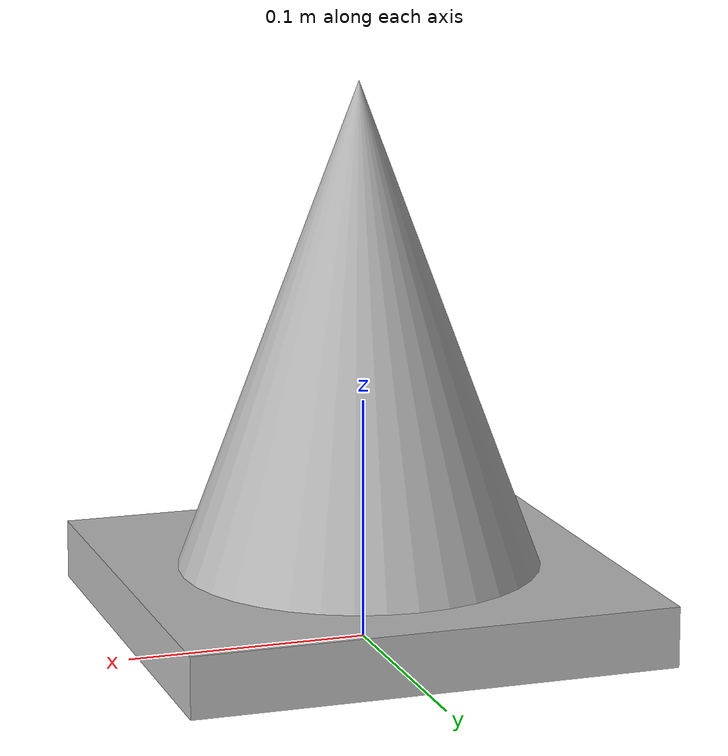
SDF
<?xml version="1.0" ?>
<sdf version="1.4">
  <model name="sankaku_cone">
    <link name="link">
      <inertial>
        <pose>0 0 0 0 0 0</pose>
        <mass>1</mass>
        <inertia>
          <ixx>0.00055575</ixx>
          <ixy>0</ixy>
          <ixz>0</ixz>
          <iyy>0.00055575</iyy>
          <iyz>0</iyz>
          <izz>0.0001755</izz>
        </inertia>
      </inertial>
      <collision name="collision">
        <pose>0 0 0 0 0 0</pose>
        <geometry>
          <mesh>
            <uri>model://sankaku_cone/meshes/sankaku_cone2.dae</uri>
            <scale>0.5 0.5 0.5</scale>
          </mesh>
        </geometry>
      </collision>
      <visual name="visual">
        <pose>0 0 0 0 0 0</pose>
        <geometry>
          <mesh>
            <uri>model://sankaku_cone/meshes/sankaku_cone2.dae</uri>
           <scale>0.5 0.5 0.5</scale>
          </mesh>
        </geometry>
      </visual>
    </link>
  </model>
</sdf>
